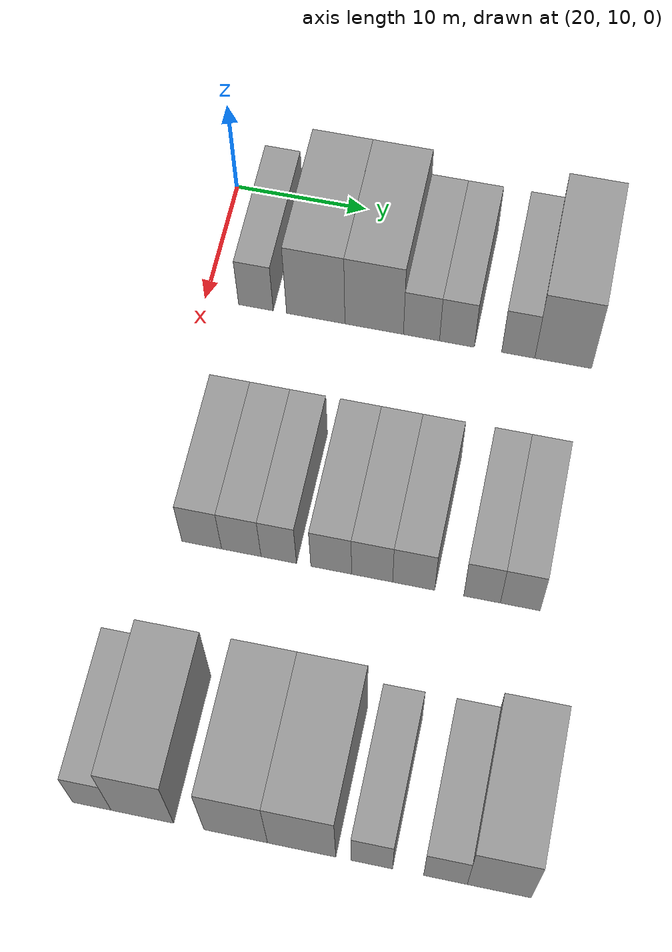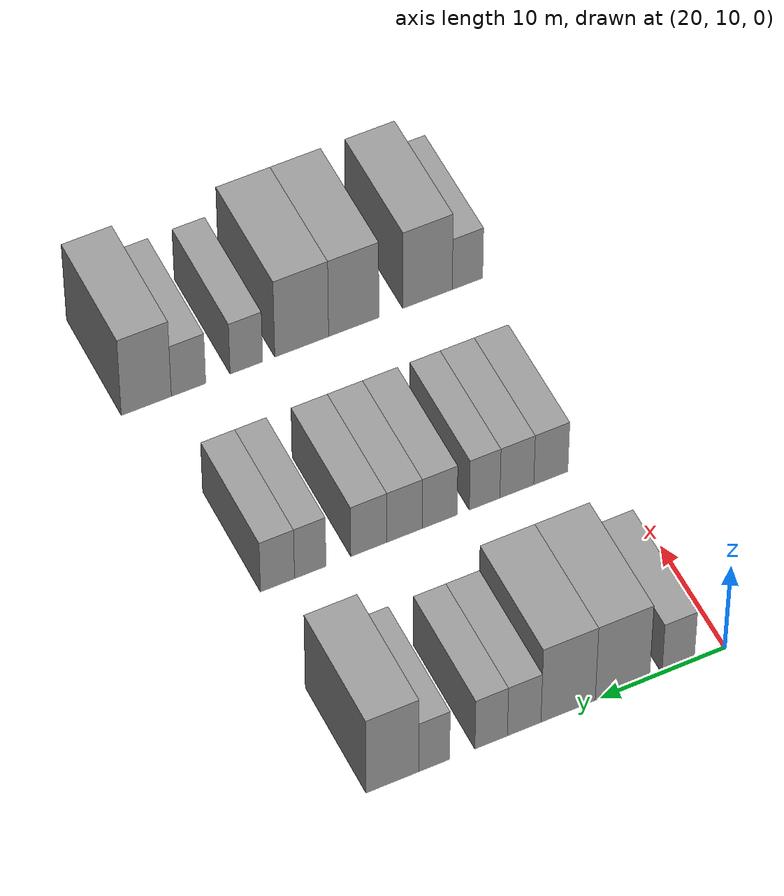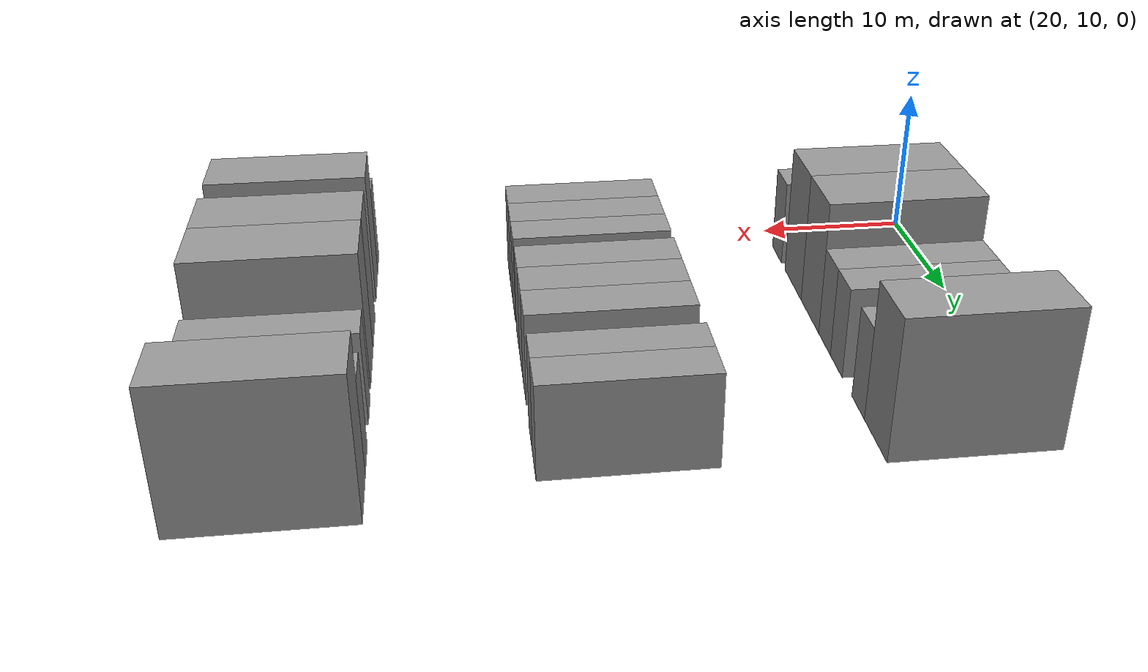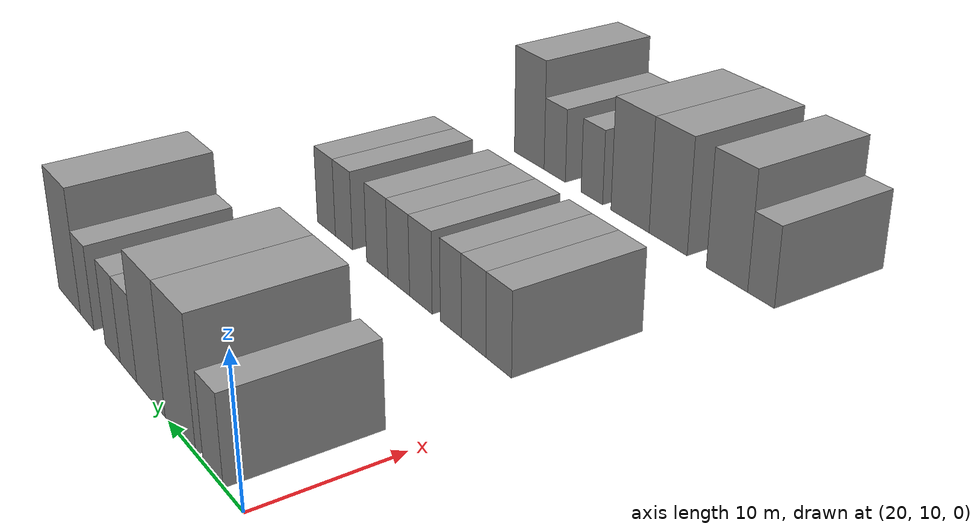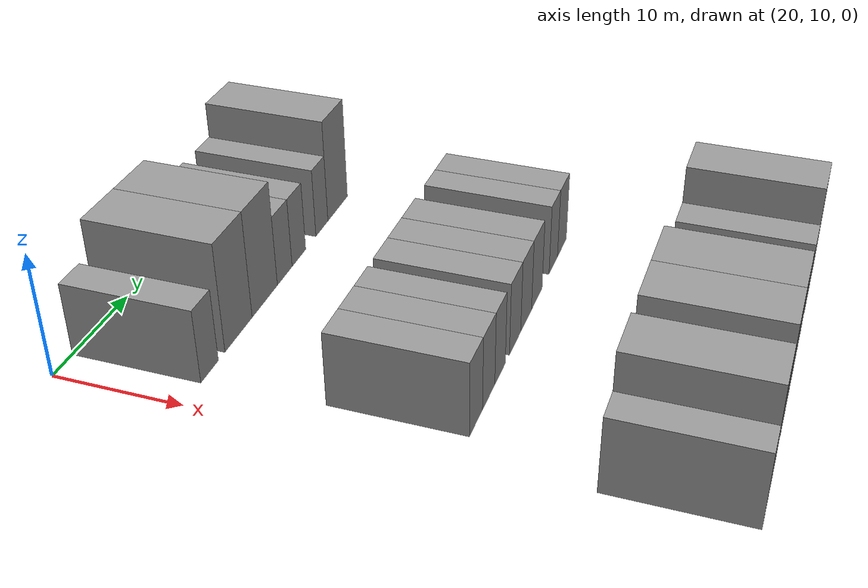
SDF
<sdf version="1.6">
 <world name="default">
  <model name="building_59">
   <static>1</static>
   <pose>25.0000 13.8162 0 0.000000 0.000000 0.000000</pose>
   <link name="link">
    <pose>0 0 3.00 0 0 0</pose>
    <collision name="collision"><geometry><box><size>10.0000 2.6035 6.0000</size></box></geometry></collision>
    <visual name="visual">
     <cast_shadows>0</cast_shadows>
     <geometry><box><size>10.0000 2.6035 6.0000</size></box></geometry>
     <material>
      <script>
       <uri>model://grey_wall/materials/scripts</uri>
       <uri>model://grey_wall/materials/textures</uri>
       <name>vrc/grey_wall</name>
      </script>
     </material>
    </visual>
   </link>
  </model>
  <model name="building_60">
   <static>1</static>
   <pose>25.0000 18.2970 0 0.000000 0.000000 0.000000</pose>
   <link name="link">
    <pose>0 0 4.50 0 0 0</pose>
    <collision name="collision"><geometry><box><size>10.0000 4.3581 9.0000</size></box></geometry></collision>
    <visual name="visual">
     <cast_shadows>0</cast_shadows>
     <geometry><box><size>10.0000 4.3581 9.0000</size></box></geometry>
     <material>
      <script>
       <uri>model://grey_wall/materials/scripts</uri>
       <uri>model://grey_wall/materials/textures</uri>
       <name>vrc/grey_wall</name>
      </script>
     </material>
    </visual>
   </link>
  </model>
  <model name="building_61">
   <static>1</static>
   <pose>25.0000 22.6482 0 0.000000 0.000000 0.000000</pose>
   <link name="link">
    <pose>0 0 4.50 0 0 0</pose>
    <collision name="collision"><geometry><box><size>10.0000 4.3442 9.0000</size></box></geometry></collision>
    <visual name="visual">
     <cast_shadows>0</cast_shadows>
     <geometry><box><size>10.0000 4.3442 9.0000</size></box></geometry>
     <material>
      <script>
       <uri>model://grey_wall/materials/scripts</uri>
       <uri>model://grey_wall/materials/textures</uri>
       <name>vrc/grey_wall</name>
      </script>
     </material>
    </visual>
   </link>
  </model>
  <model name="building_62">
   <static>1</static>
   <pose>25.0000 26.1562 0 0.000000 0.000000 0.000000</pose>
   <link name="link">
    <pose>0 0 3.00 0 0 0</pose>
    <collision name="collision"><geometry><box><size>10.0000 2.6719 6.0000</size></box></geometry></collision>
    <visual name="visual">
     <cast_shadows>0</cast_shadows>
     <geometry><box><size>10.0000 2.6719 6.0000</size></box></geometry>
     <material>
      <script>
       <uri>model://grey_wall/materials/scripts</uri>
       <uri>model://grey_wall/materials/textures</uri>
       <name>vrc/grey_wall</name>
      </script>
     </material>
    </visual>
   </link>
  </model>
  <model name="building_63">
   <static>1</static>
   <pose>25.0000 28.7782 0 0.000000 0.000000 0.000000</pose>
   <link name="link">
    <pose>0 0 3.00 0 0 0</pose>
    <collision name="collision"><geometry><box><size>10.0000 2.5722 6.0000</size></box></geometry></collision>
    <visual name="visual">
     <cast_shadows>0</cast_shadows>
     <geometry><box><size>10.0000 2.5722 6.0000</size></box></geometry>
     <material>
      <script>
       <uri>model://grey_wall/materials/scripts</uri>
       <uri>model://grey_wall/materials/textures</uri>
       <name>vrc/grey_wall</name>
      </script>
     </material>
    </visual>
   </link>
  </model>
  <model name="building_64">
   <static>1</static>
   <pose>25.0000 33.2823 0 0.000000 0.000000 0.000000</pose>
   <link name="link">
    <pose>0 0 3.00 0 0 0</pose>
    <collision name="collision"><geometry><box><size>10.0000 2.4359 6.0000</size></box></geometry></collision>
    <visual name="visual">
     <cast_shadows>0</cast_shadows>
     <geometry><box><size>10.0000 2.4359 6.0000</size></box></geometry>
     <material>
      <script>
       <uri>model://grey_wall/materials/scripts</uri>
       <uri>model://grey_wall/materials/textures</uri>
       <name>vrc/grey_wall</name>
      </script>
     </material>
    </visual>
   </link>
  </model>
  <model name="building_65">
   <static>1</static>
   <pose>25.0000 36.5672 0 0.000000 0.000000 0.000000</pose>
   <link name="link">
    <pose>0 0 4.50 0 0 0</pose>
    <collision name="collision"><geometry><box><size>10.0000 4.1339 9.0000</size></box></geometry></collision>
    <visual name="visual">
     <cast_shadows>0</cast_shadows>
     <geometry><box><size>10.0000 4.1339 9.0000</size></box></geometry>
     <material>
      <script>
       <uri>model://grey_wall/materials/scripts</uri>
       <uri>model://grey_wall/materials/textures</uri>
       <name>vrc/grey_wall</name>
      </script>
     </material>
    </visual>
   </link>
  </model>
  <model name="building_184">
   <static>1</static>
   <pose>44.0000 14.4424 0 0.000000 0.000000 0.000000</pose>
   <link name="link">
    <pose>0 0 3.00 0 0 0</pose>
    <collision name="collision"><geometry><box><size>10.0000 2.8017 6.0000</size></box></geometry></collision>
    <visual name="visual">
     <cast_shadows>0</cast_shadows>
     <geometry><box><size>10.0000 2.8017 6.0000</size></box></geometry>
     <material>
      <script>
       <uri>model://grey_wall/materials/scripts</uri>
       <uri>model://grey_wall/materials/textures</uri>
       <name>vrc/grey_wall</name>
      </script>
     </material>
    </visual>
   </link>
  </model>
  <model name="building_185">
   <static>1</static>
   <pose>44.0000 17.2338 0 0.000000 0.000000 0.000000</pose>
   <link name="link">
    <pose>0 0 3.00 0 0 0</pose>
    <collision name="collision"><geometry><box><size>10.0000 2.7811 6.0000</size></box></geometry></collision>
    <visual name="visual">
     <cast_shadows>0</cast_shadows>
     <geometry><box><size>10.0000 2.7811 6.0000</size></box></geometry>
     <material>
      <script>
       <uri>model://grey_wall/materials/scripts</uri>
       <uri>model://grey_wall/materials/textures</uri>
       <name>vrc/grey_wall</name>
      </script>
     </material>
    </visual>
   </link>
  </model>
  <model name="building_186">
   <static>1</static>
   <pose>44.0000 19.8703 0 0.000000 0.000000 0.000000</pose>
   <link name="link">
    <pose>0 0 3.00 0 0 0</pose>
    <collision name="collision"><geometry><box><size>10.0000 2.4919 6.0000</size></box></geometry></collision>
    <visual name="visual">
     <cast_shadows>0</cast_shadows>
     <geometry><box><size>10.0000 2.4919 6.0000</size></box></geometry>
     <material>
      <script>
       <uri>model://grey_wall/materials/scripts</uri>
       <uri>model://grey_wall/materials/textures</uri>
       <name>vrc/grey_wall</name>
      </script>
     </material>
    </visual>
   </link>
  </model>
  <model name="building_187">
   <static>1</static>
   <pose>44.0000 23.5360 0 0.000000 0.000000 0.000000</pose>
   <link name="link">
    <pose>0 0 3.00 0 0 0</pose>
    <collision name="collision"><geometry><box><size>10.0000 2.8397 6.0000</size></box></geometry></collision>
    <visual name="visual">
     <cast_shadows>0</cast_shadows>
     <geometry><box><size>10.0000 2.8397 6.0000</size></box></geometry>
     <material>
      <script>
       <uri>model://grey_wall/materials/scripts</uri>
       <uri>model://grey_wall/materials/textures</uri>
       <name>vrc/grey_wall</name>
      </script>
     </material>
    </visual>
   </link>
  </model>
  <model name="building_188">
   <static>1</static>
   <pose>44.0000 26.3841 0 0.000000 0.000000 0.000000</pose>
   <link name="link">
    <pose>0 0 3.00 0 0 0</pose>
    <collision name="collision"><geometry><box><size>10.0000 2.8566 6.0000</size></box></geometry></collision>
    <visual name="visual">
     <cast_shadows>0</cast_shadows>
     <geometry><box><size>10.0000 2.8566 6.0000</size></box></geometry>
     <material>
      <script>
       <uri>model://grey_wall/materials/scripts</uri>
       <uri>model://grey_wall/materials/textures</uri>
       <name>vrc/grey_wall</name>
      </script>
     </material>
    </visual>
   </link>
  </model>
  <model name="building_189">
   <static>1</static>
   <pose>44.0000 29.2709 0 0.000000 0.000000 0.000000</pose>
   <link name="link">
    <pose>0 0 3.00 0 0 0</pose>
    <collision name="collision"><geometry><box><size>10.0000 2.9171 6.0000</size></box></geometry></collision>
    <visual name="visual">
     <cast_shadows>0</cast_shadows>
     <geometry><box><size>10.0000 2.9171 6.0000</size></box></geometry>
     <material>
      <script>
       <uri>model://grey_wall/materials/scripts</uri>
       <uri>model://grey_wall/materials/textures</uri>
       <name>vrc/grey_wall</name>
      </script>
     </material>
    </visual>
   </link>
  </model>
  <model name="building_190">
   <static>1</static>
   <pose>44.0000 33.9894 0 0.000000 0.000000 0.000000</pose>
   <link name="link">
    <pose>0 0 3.00 0 0 0</pose>
    <collision name="collision"><geometry><box><size>10.0000 2.5199 6.0000</size></box></geometry></collision>
    <visual name="visual">
     <cast_shadows>0</cast_shadows>
     <geometry><box><size>10.0000 2.5199 6.0000</size></box></geometry>
     <material>
      <script>
       <uri>model://grey_wall/materials/scripts</uri>
       <uri>model://grey_wall/materials/textures</uri>
       <name>vrc/grey_wall</name>
      </script>
     </material>
    </visual>
   </link>
  </model>
  <model name="building_191">
   <static>1</static>
   <pose>44.0000 36.6136 0 0.000000 0.000000 0.000000</pose>
   <link name="link">
    <pose>0 0 3.00 0 0 0</pose>
    <collision name="collision"><geometry><box><size>10.0000 2.7285 6.0000</size></box></geometry></collision>
    <visual name="visual">
     <cast_shadows>0</cast_shadows>
     <geometry><box><size>10.0000 2.7285 6.0000</size></box></geometry>
     <material>
      <script>
       <uri>model://grey_wall/materials/scripts</uri>
       <uri>model://grey_wall/materials/textures</uri>
       <name>vrc/grey_wall</name>
      </script>
     </material>
    </visual>
   </link>
  </model>
  <model name="building_295">
   <static>1</static>
   <pose>63.0000 11.8900 0 0.000000 0.000000 0.000000</pose>
   <link name="link">
    <pose>0 0 3.00 0 0 0</pose>
    <collision name="collision"><geometry><box><size>10.0000 2.5523 6.0000</size></box></geometry></collision>
    <visual name="visual">
     <cast_shadows>0</cast_shadows>
     <geometry><box><size>10.0000 2.5523 6.0000</size></box></geometry>
     <material>
      <script>
       <uri>model://grey_wall/materials/scripts</uri>
       <uri>model://grey_wall/materials/textures</uri>
       <name>vrc/grey_wall</name>
      </script>
     </material>
    </visual>
   </link>
  </model>
  <model name="building_296">
   <static>1</static>
   <pose>63.0000 15.2356 0 0.000000 0.000000 0.000000</pose>
   <link name="link">
    <pose>0 0 4.50 0 0 0</pose>
    <collision name="collision"><geometry><box><size>10.0000 4.1389 9.0000</size></box></geometry></collision>
    <visual name="visual">
     <cast_shadows>0</cast_shadows>
     <geometry><box><size>10.0000 4.1389 9.0000</size></box></geometry>
     <material>
      <script>
       <uri>model://grey_wall/materials/scripts</uri>
       <uri>model://grey_wall/materials/textures</uri>
       <name>vrc/grey_wall</name>
      </script>
     </material>
    </visual>
   </link>
  </model>
  <model name="building_297">
   <static>1</static>
   <pose>63.0000 21.3896 0 0.000000 0.000000 0.000000</pose>
   <link name="link">
    <pose>0 0 4.50 0 0 0</pose>
    <collision name="collision"><geometry><box><size>10.0000 4.1691 9.0000</size></box></geometry></collision>
    <visual name="visual">
     <cast_shadows>0</cast_shadows>
     <geometry><box><size>10.0000 4.1691 9.0000</size></box></geometry>
     <material>
      <script>
       <uri>model://grey_wall/materials/scripts</uri>
       <uri>model://grey_wall/materials/textures</uri>
       <name>vrc/grey_wall</name>
      </script>
     </material>
    </visual>
   </link>
  </model>
  <model name="building_298">
   <static>1</static>
   <pose>63.0000 25.6983 0 0.000000 0.000000 0.000000</pose>
   <link name="link">
    <pose>0 0 4.50 0 0 0</pose>
    <collision name="collision"><geometry><box><size>10.0000 4.4484 9.0000</size></box></geometry></collision>
    <visual name="visual">
     <cast_shadows>0</cast_shadows>
     <geometry><box><size>10.0000 4.4484 9.0000</size></box></geometry>
     <material>
      <script>
       <uri>model://grey_wall/materials/scripts</uri>
       <uri>model://grey_wall/materials/textures</uri>
       <name>vrc/grey_wall</name>
      </script>
     </material>
    </visual>
   </link>
  </model>
  <model name="building_299">
   <static>1</static>
   <pose>63.0000 30.2595 0 0.000000 0.000000 0.000000</pose>
   <link name="link">
    <pose>0 0 3.00 0 0 0</pose>
    <collision name="collision"><geometry><box><size>10.0000 2.6741 6.0000</size></box></geometry></collision>
    <visual name="visual">
     <cast_shadows>0</cast_shadows>
     <geometry><box><size>10.0000 2.6741 6.0000</size></box></geometry>
     <material>
      <script>
       <uri>model://grey_wall/materials/scripts</uri>
       <uri>model://grey_wall/materials/textures</uri>
       <name>vrc/grey_wall</name>
      </script>
     </material>
    </visual>
   </link>
  </model>
  <model name="building_300">
   <static>1</static>
   <pose>63.0000 34.9991 0 0.000000 0.000000 0.000000</pose>
   <link name="link">
    <pose>0 0 3.00 0 0 0</pose>
    <collision name="collision"><geometry><box><size>10.0000 2.8051 6.0000</size></box></geometry></collision>
    <visual name="visual">
     <cast_shadows>0</cast_shadows>
     <geometry><box><size>10.0000 2.8051 6.0000</size></box></geometry>
     <material>
      <script>
       <uri>model://grey_wall/materials/scripts</uri>
       <uri>model://grey_wall/materials/textures</uri>
       <name>vrc/grey_wall</name>
      </script>
     </material>
    </visual>
   </link>
  </model>
  <model name="building_301">
   <static>1</static>
   <pose>63.0000 38.4409 0 0.000000 0.000000 0.000000</pose>
   <link name="link">
    <pose>0 0 4.50 0 0 0</pose>
    <collision name="collision"><geometry><box><size>10.0000 4.0785 9.0000</size></box></geometry></collision>
    <visual name="visual">
     <cast_shadows>0</cast_shadows>
     <geometry><box><size>10.0000 4.0785 9.0000</size></box></geometry>
     <material>
      <script>
       <uri>model://grey_wall/materials/scripts</uri>
       <uri>model://grey_wall/materials/textures</uri>
       <name>vrc/grey_wall</name>
      </script>
     </material>
    </visual>
   </link>
  </model>
 </world>
</sdf>
